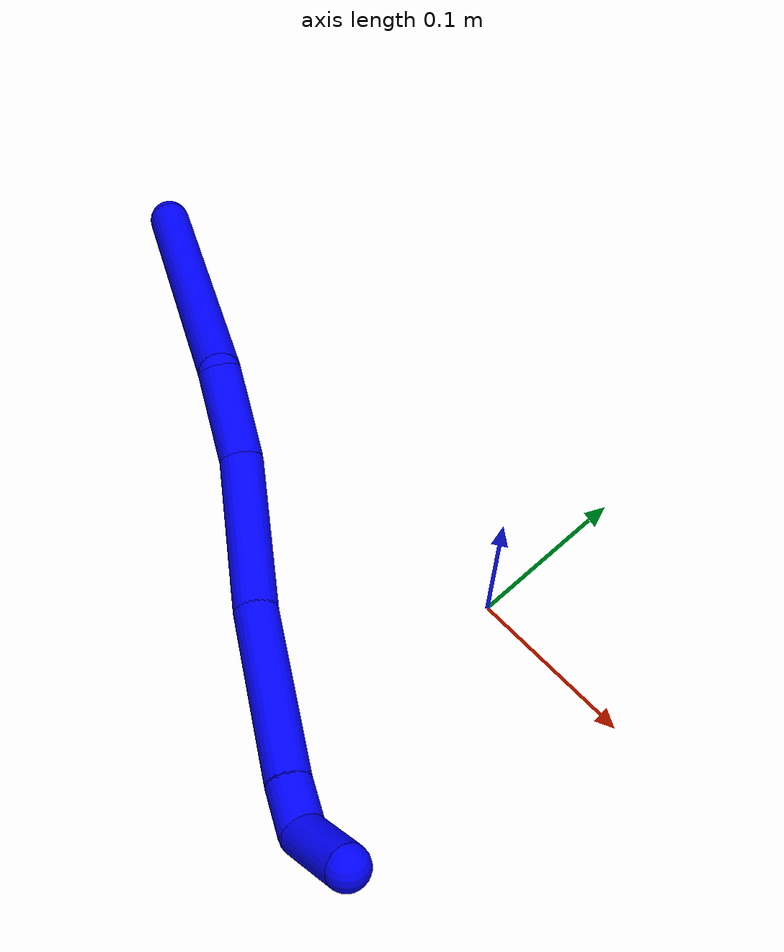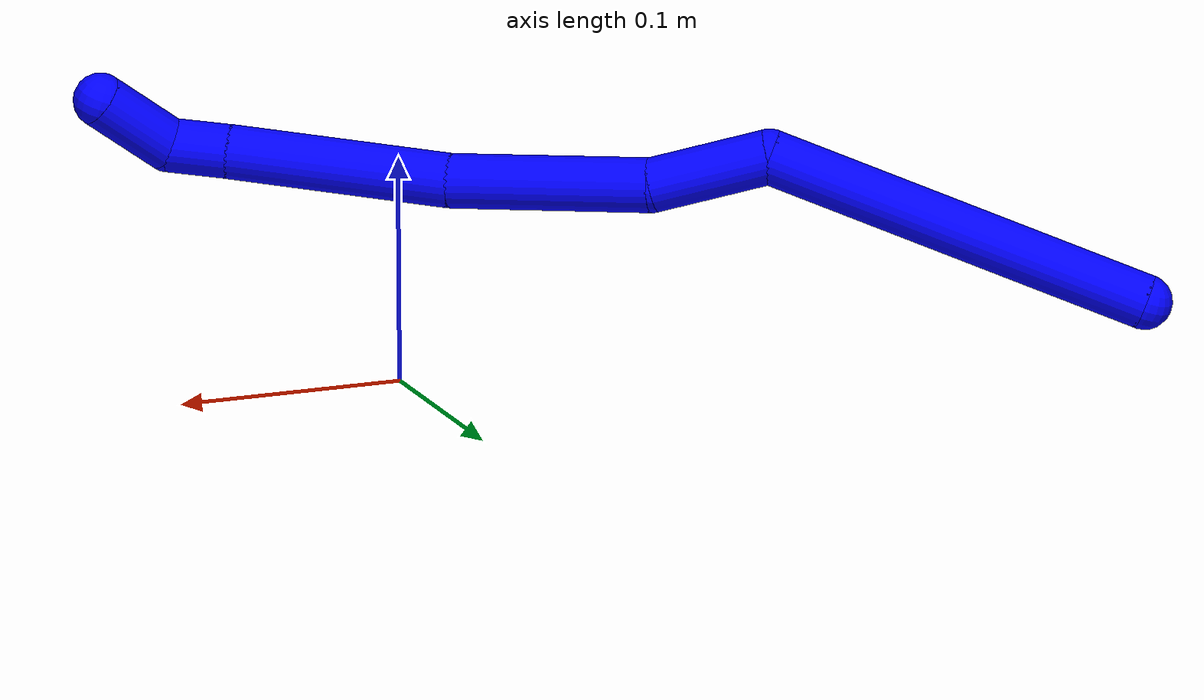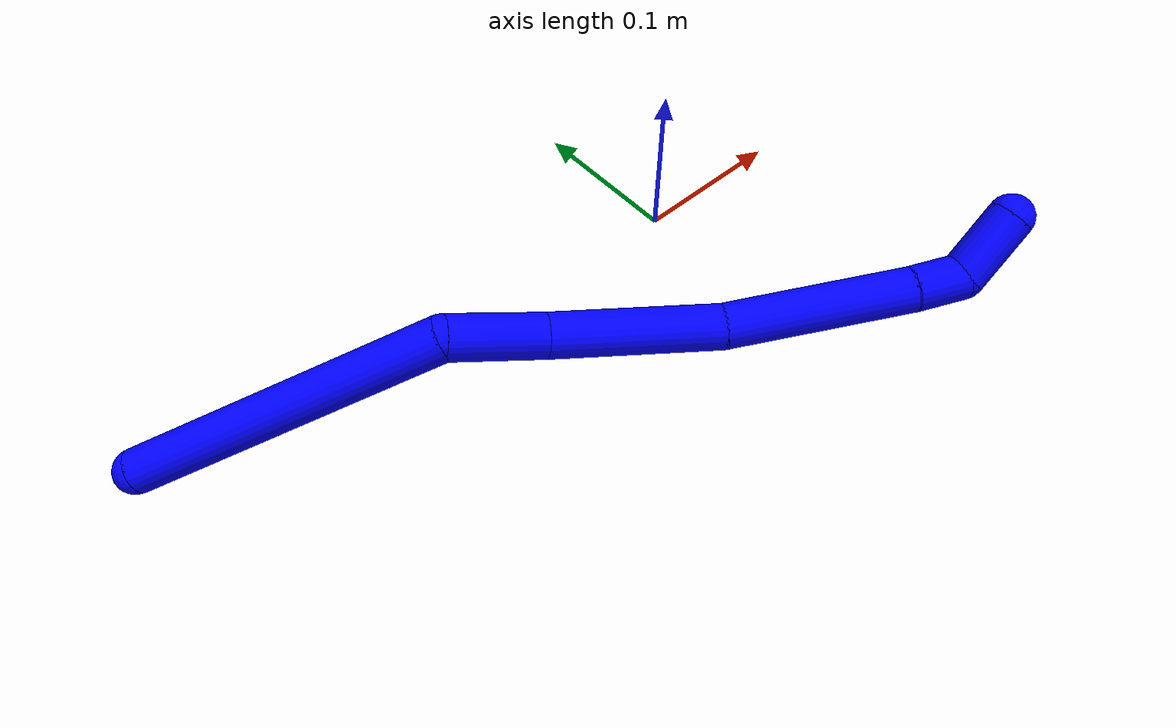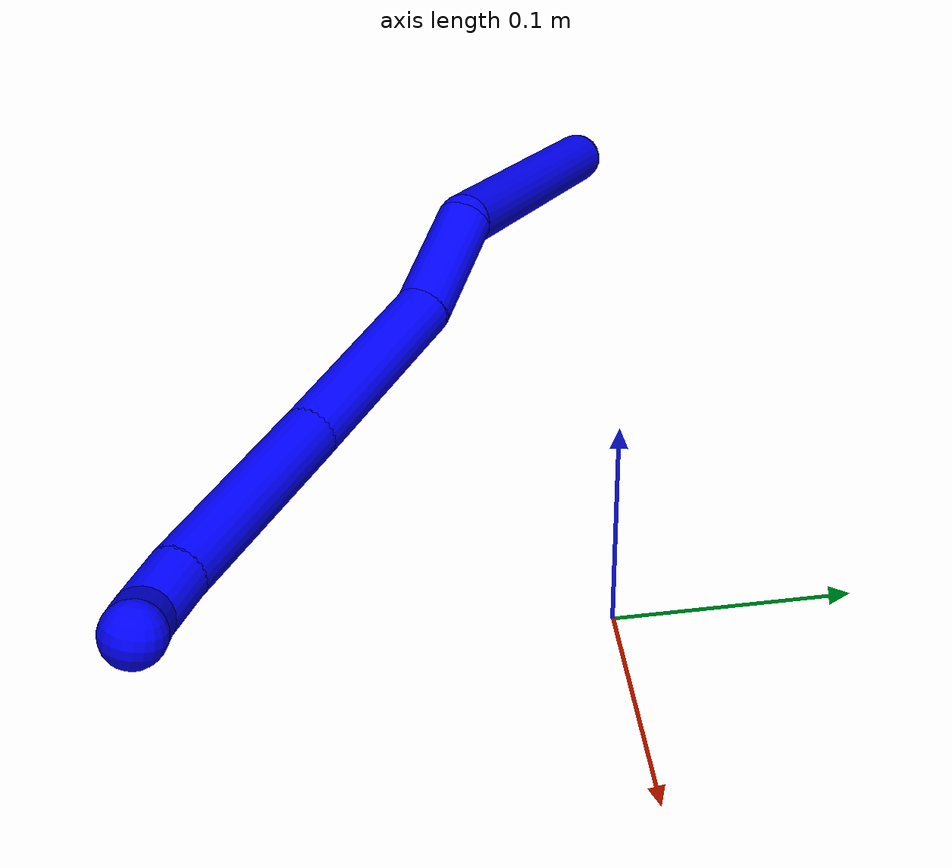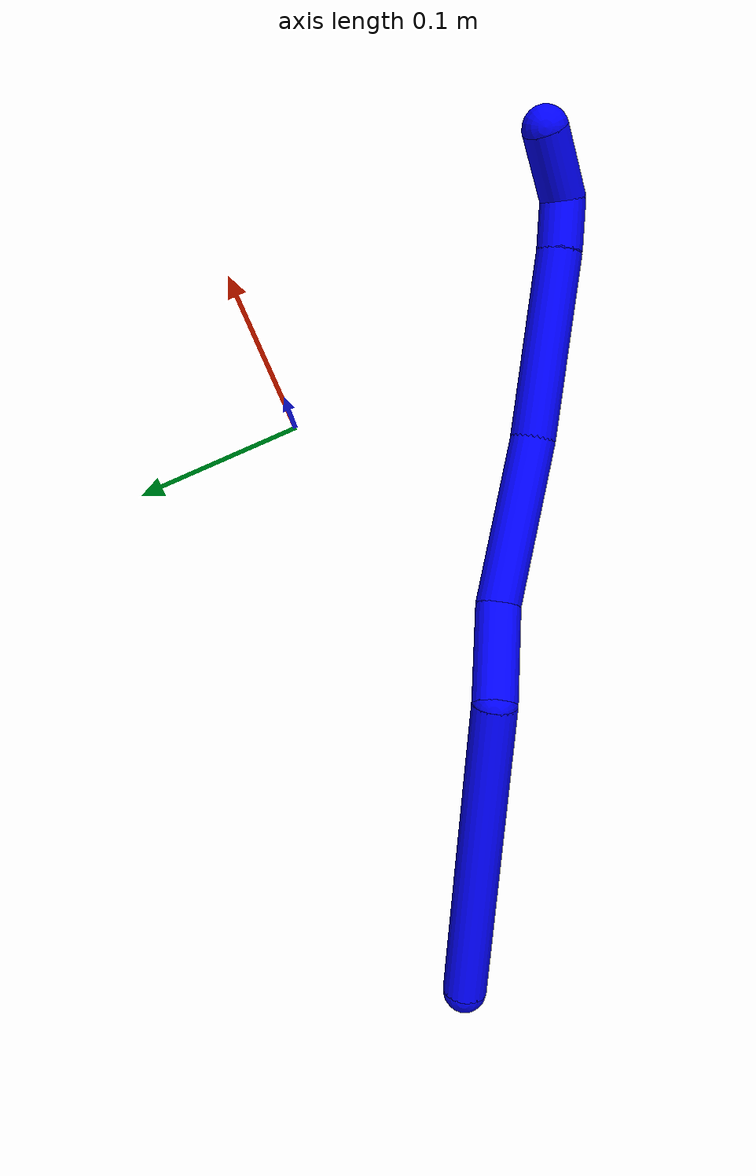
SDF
<sdf version="1.7">
 <world name="default">
  <plugin name="TubeGeneratorPlugin" filename="libtube_generator_plugin.so"/>
  <model name="photoneo_s_sensor">
   <static>1</static>
   <pose>0 0 2 1.57079 1.57079 3.14159</pose>
   <link name="link">
    <inertial><mass>0.1</mass></inertial>
    <sensor name="sensor" type="depth">
     <update_rate>30</update_rate>
     <camera>
      <horizontal_fov>1.22</horizontal_fov>
      <image><width>1920</width><height>1200</height><format>B8G8R8</format></image>
      <clip><near>0.1</near><far>4</far></clip>
      <depth_camera><output>points</output></depth_camera>
     </camera>
     <plugin name="camera_plugin" filename="libgazebo_ros_depth_camera.so">
      <baseline>0.2</baseline>
      <alwaysOn>1</alwaysOn>
      <updateRate>0.0</updateRate>
      <cameraName>camera_ir</cameraName>
      <imageTopicName>/camera/color/image_raw</imageTopicName>
      <cameraInfoTopicName>/camera/color/camera_info</cameraInfoTopicName>
      <depthImageTopicName>/camera/depth/image_raw</depthImageTopicName>
      <depthImageCameraInfoTopicName>/camera/depth/camera_info</depthImageCameraInfoTopicName>
      <pointCloudTopicName>/camera/depth/points</pointCloudTopicName>
      <frameName>fr_optical</frameName>
      <pointCloudCutoff>0.1</pointCloudCutoff>
      <pointCloudCutoffMax>2.0</pointCloudCutoffMax>
      <distortionK1>0</distortionK1>
      <distortionK2>0</distortionK2>
      <distortionK3>0</distortionK3>
      <distortionT1>0</distortionT1>
      <distortionT2>0</distortionT2>
      <CxPrime>0</CxPrime>
      <Cx>0</Cx>
      <Cy>0</Cy>
      <focalLength>0</focalLength>
      <hackBaseline>0</hackBaseline>
     </plugin>
    </sensor>
   </link>
  </model>
  <gravity>0 0 -9.8</gravity>
  <magnetic_field>6e-06 2.3e-05 -4.2e-05</magnetic_field>
  <atmosphere type="adiabatic"/>
  <physics name="default_physics" default="0" type="ode">
   <max_step_size>0.003</max_step_size>
   <real_time_factor>1</real_time_factor>
   <real_time_update_rate>1000</real_time_update_rate>
   <max_contacts>10000</max_contacts>
   <ode>
    <solver>
     <type>quick</type>
     <iters>100</iters>
     <sor>1.3</sor>
     <use_dynamic_moi_rescaling>0</use_dynamic_moi_rescaling>
    </solver>
    <constraints>
     <contact_max_correcting_vel>0</contact_max_correcting_vel>
     <contact_surface_layer>0.001</contact_surface_layer>
     <cfm>0</cfm>
     <erp>0.2</erp>
    </constraints>
   </ode>
  </physics>
  <scene><ambient>0.4 0.4 0.4 1</ambient><background>0.7 0.7 0.7 1</background><shadows>0</shadows></scene>
  <audio><device>default</device></audio>
  <spherical_coordinates>
   <surface_model>EARTH_WGS84</surface_model>
   <latitude_deg>0</latitude_deg>
   <longitude_deg>0</longitude_deg>
   <elevation>0</elevation>
   <heading_deg>0</heading_deg>
  </spherical_coordinates>
  <model name="bin">
   <static>1</static>
   <link name="bottom">
    <collision name="collision-bottom">
     <pose>0 0 -0.01 0 -0 0</pose>
     <geometry><box><size>0.8 0.6 0.02</size></box></geometry>
     <surface>
      <friction><ode><mu>100</mu><mu2>100</mu2></ode></friction>
      <contact><collide_bitmask>65535</collide_bitmask></contact>
     </surface>
    </collision>
   </link>
   <link name="west_wall">
    <collision name="collision-west_wall">
     <pose>-0.41 0 0.1 0 -0 0</pose>
     <geometry><box><size>0.02 0.6 0.2</size></box></geometry>
     <surface>
      <friction><ode><mu>100</mu><mu2>100</mu2></ode></friction>
      <contact><collide_bitmask>65535</collide_bitmask></contact>
     </surface>
    </collision>
   </link>
   <link name="east_wall">
    <collision name="collision-east_wall">
     <pose>0.41 0 0.1 0 -0 0</pose>
     <geometry><box><size>0.02 0.6 0.2</size></box></geometry>
     <surface>
      <friction><ode><mu>100</mu><mu2>100</mu2></ode></friction>
      <contact><collide_bitmask>65535</collide_bitmask></contact>
     </surface>
    </collision>
   </link>
   <link name="south_wall">
    <collision name="collision-south_wall">
     <pose>0 -0.31 0.1 0 -0 0</pose>
     <geometry><box><size>0.8 0.02 0.2</size></box></geometry>
     <surface>
      <friction><ode><mu>100</mu><mu2>100</mu2></ode></friction>
      <contact><collide_bitmask>65535</collide_bitmask></contact>
     </surface>
    </collision>
   </link>
   <link name="north_wall">
    <collision name="collision-north_wall">
     <pose>0 0.31 0.1 0 -0 0</pose>
     <geometry><box><size>0.8 0.02 0.2</size></box></geometry>
     <surface>
      <friction><ode><mu>100</mu><mu2>100</mu2></ode></friction>
      <contact><collide_bitmask>65535</collide_bitmask></contact>
     </surface>
    </collision>
   </link>
  </model>
  <model name="1">
   <static>0</static>
   <link name="1">
    <collision name="collision-cylinder-e_1_1_4">
     <pose>0.078956 -0.043581 0.000483 1.55971 1.06641 1.05674</pose>
     <geometry><cylinder><radius>0.0125</radius><length>0.180373</length></cylinder></geometry>
     <surface>
      <friction><ode><mu>1.16</mu><mu2>1.16</mu2><slip1>0</slip1><slip2>0</slip2></ode></friction>
      <contact><ode><kp>1e+06</kp><kd>1</kd><max_vel>0</max_vel><min_depth>0.001</min_depth></ode></contact>
     </surface>
    </collision>
    <visual name="visual-cylinder-e_1_1_4">
     <pose>0.078956 -0.043581 0.000483 1.55971 1.06641 1.05674</pose>
     <geometry><cylinder><radius>0.0125</radius><length>0.180373</length></cylinder></geometry>
     <material><ambient>0 0 1 1</ambient></material>
    </visual>
    <collision name="collision-cylinder-e_2_4_5">
     <pose>0.178299 -0.096614 -0.014915 2.60479 0.834409 2.03082</pose>
     <geometry><cylinder><radius>0.0125</radius><length>0.055034</length></cylinder></geometry>
     <surface>
      <friction><ode><mu>1.16</mu><mu2>1.16</mu2><slip1>0</slip1><slip2>0</slip2></ode></friction>
      <contact><ode><kp>1e+06</kp><kd>1</kd><max_vel>0</max_vel><min_depth>0.001</min_depth></ode></contact>
     </surface>
    </collision>
    <visual name="visual-cylinder-e_2_4_5">
     <pose>0.178299 -0.096614 -0.014915 2.60479 0.834409 2.03082</pose>
     <geometry><cylinder><radius>0.0125</radius><length>0.055034</length></cylinder></geometry>
     <material><ambient>0 0 1 1</ambient></material>
    </visual>
    <collision name="collision-cylinder-e_3_5_6">
     <pose>0.233842 -0.131198 -0.048942 2.19612 0.84816 1.44646</pose>
     <geometry><cylinder><radius>0.0125</radius><length>0.093742</length></cylinder></geometry>
     <surface>
      <friction><ode><mu>1.16</mu><mu2>1.16</mu2><slip1>0</slip1><slip2>0</slip2></ode></friction>
      <contact><ode><kp>1e+06</kp><kd>1</kd><max_vel>0</max_vel><min_depth>0.001</min_depth></ode></contact>
     </surface>
    </collision>
    <visual name="visual-cylinder-e_3_5_6">
     <pose>0.233842 -0.131198 -0.048942 2.19612 0.84816 1.44646</pose>
     <geometry><cylinder><radius>0.0125</radius><length>0.093742</length></cylinder></geometry>
     <material><ambient>0 0 1 1</ambient></material>
    </visual>
    <collision name="collision-cylinder-e_4_6_7">
     <pose>0.311414 -0.182075 -0.080443 2.04934 0.971041 1.42987</pose>
     <geometry><cylinder><radius>0.0125</radius><length>0.102765</length></cylinder></geometry>
     <surface>
      <friction><ode><mu>1.16</mu><mu2>1.16</mu2><slip1>0</slip1><slip2>0</slip2></ode></friction>
      <contact><ode><kp>1e+06</kp><kd>1</kd><max_vel>0</max_vel><min_depth>0.001</min_depth></ode></contact>
     </surface>
    </collision>
    <visual name="visual-cylinder-e_4_6_7">
     <pose>0.311414 -0.182075 -0.080443 2.04934 0.971041 1.42987</pose>
     <geometry><cylinder><radius>0.0125</radius><length>0.102765</length></cylinder></geometry>
     <material><ambient>0 0 1 1</ambient></material>
    </visual>
    <collision name="collision-cylinder-e_5_7_8">
     <pose>0.36601 -0.213979 -0.097393 2.09908 1.04118 1.56925</pose>
     <geometry><cylinder><radius>0.0125</radius><length>0.028232</length></cylinder></geometry>
     <surface>
      <friction><ode><mu>1.16</mu><mu2>1.16</mu2><slip1>0</slip1><slip2>0</slip2></ode></friction>
      <contact><ode><kp>1e+06</kp><kd>1</kd><max_vel>0</max_vel><min_depth>0.001</min_depth></ode></contact>
     </surface>
    </collision>
    <visual name="visual-cylinder-e_5_7_8">
     <pose>0.36601 -0.213979 -0.097393 2.09908 1.04118 1.56925</pose>
     <geometry><cylinder><radius>0.0125</radius><length>0.028232</length></cylinder></geometry>
     <material><ambient>0 0 1 1</ambient></material>
    </visual>
    <collision name="collision-cylinder-e_6_8_2">
     <pose>0.396722 -0.222626 -0.09409 0.346246 1.194 0.236627</pose>
     <geometry><cylinder><radius>0.0125</radius><length>0.039855</length></cylinder></geometry>
     <surface>
      <friction><ode><mu>1.16</mu><mu2>1.16</mu2><slip1>0</slip1><slip2>0</slip2></ode></friction>
      <contact><ode><kp>1e+06</kp><kd>1</kd><max_vel>0</max_vel><min_depth>0.001</min_depth></ode></contact>
     </surface>
    </collision>
    <visual name="visual-cylinder-e_6_8_2">
     <pose>0.396722 -0.222626 -0.09409 0.346246 1.194 0.236627</pose>
     <geometry><cylinder><radius>0.0125</radius><length>0.039855</length></cylinder></geometry>
     <material><ambient>0 0 1 1</ambient></material>
    </visual>
    <collision name="collision-sphere-2">
     <pose>0.415251 -0.225115 -0.087193 0 -0 0</pose>
     <geometry><sphere><radius>0.0125</radius></sphere></geometry>
     <surface>
      <friction><ode><mu>1.16</mu><mu2>1.16</mu2><slip1>0</slip1><slip2>0</slip2></ode></friction>
      <contact><ode><kp>1e+06</kp><kd>1</kd><max_vel>0</max_vel><min_depth>0.001</min_depth></ode></contact>
     </surface>
    </collision>
    <visual name="visual-sphere-2">
     <pose>0.415251 -0.225115 -0.087193 0 -0 0</pose>
     <geometry><sphere><radius>0.0125</radius></sphere></geometry>
     <material><ambient>0 0 1 1</ambient></material>
    </visual>
    <collision name="collision-sphere-4">
     <pose>0.157912 -0.087163 0.000966 0 -0 0</pose>
     <geometry><sphere><radius>0.0125</radius></sphere></geometry>
     <surface>
      <friction><ode><mu>1.16</mu><mu2>1.16</mu2><slip1>0</slip1><slip2>0</slip2></ode></friction>
      <contact><ode><kp>1e+06</kp><kd>1</kd><max_vel>0</max_vel><min_depth>0.001</min_depth></ode></contact>
     </surface>
    </collision>
    <visual name="visual-sphere-4">
     <pose>0.157912 -0.087163 0.000966 0 -0 0</pose>
     <geometry><sphere><radius>0.0125</radius></sphere></geometry>
     <material><ambient>0 0 1 1</ambient></material>
    </visual>
    <collision name="collision-sphere-1">
     <geometry><sphere><radius>0.0125</radius></sphere></geometry>
     <surface>
      <friction><ode><mu>1.16</mu><mu2>1.16</mu2><slip1>0</slip1><slip2>0</slip2></ode></friction>
      <contact><ode><kp>1e+06</kp><kd>1</kd><max_vel>0</max_vel><min_depth>0.001</min_depth></ode></contact>
     </surface>
    </collision>
    <visual name="visual-sphere-1">
     <geometry><sphere><radius>0.0125</radius></sphere></geometry>
     <material><ambient>0 0 1 1</ambient></material>
    </visual>
    <collision name="collision-sphere-8">
     <pose>0.378192 -0.220138 -0.100987 0 -0 0</pose>
     <geometry><sphere><radius>0.0125</radius></sphere></geometry>
     <surface>
      <friction><ode><mu>1.16</mu><mu2>1.16</mu2><slip1>0</slip1><slip2>0</slip2></ode></friction>
      <contact><ode><kp>1e+06</kp><kd>1</kd><max_vel>0</max_vel><min_depth>0.001</min_depth></ode></contact>
     </surface>
    </collision>
    <visual name="visual-sphere-8">
     <pose>0.378192 -0.220138 -0.100987 0 -0 0</pose>
     <geometry><sphere><radius>0.0125</radius></sphere></geometry>
     <material><ambient>0 0 1 1</ambient></material>
    </visual>
    <collision name="collision-sphere-5">
     <pose>0.198686 -0.106065 -0.030797 0 -0 0</pose>
     <geometry><sphere><radius>0.0125</radius></sphere></geometry>
     <surface>
      <friction><ode><mu>1.16</mu><mu2>1.16</mu2><slip1>0</slip1><slip2>0</slip2></ode></friction>
      <contact><ode><kp>1e+06</kp><kd>1</kd><max_vel>0</max_vel><min_depth>0.001</min_depth></ode></contact>
     </surface>
    </collision>
    <visual name="visual-sphere-5">
     <pose>0.198686 -0.106065 -0.030797 0 -0 0</pose>
     <geometry><sphere><radius>0.0125</radius></sphere></geometry>
     <material><ambient>0 0 1 1</ambient></material>
    </visual>
    <collision name="collision-sphere-6">
     <pose>0.268999 -0.156331 -0.067087 0 -0 0</pose>
     <geometry><sphere><radius>0.0125</radius></sphere></geometry>
     <surface>
      <friction><ode><mu>1.16</mu><mu2>1.16</mu2><slip1>0</slip1><slip2>0</slip2></ode></friction>
      <contact><ode><kp>1e+06</kp><kd>1</kd><max_vel>0</max_vel><min_depth>0.001</min_depth></ode></contact>
     </surface>
    </collision>
    <visual name="visual-sphere-6">
     <pose>0.268999 -0.156331 -0.067087 0 -0 0</pose>
     <geometry><sphere><radius>0.0125</radius></sphere></geometry>
     <material><ambient>0 0 1 1</ambient></material>
    </visual>
    <collision name="collision-sphere-7">
     <pose>0.353828 -0.207819 -0.093798 0 -0 0</pose>
     <geometry><sphere><radius>0.0125</radius></sphere></geometry>
     <surface>
      <friction><ode><mu>1.16</mu><mu2>1.16</mu2><slip1>0</slip1><slip2>0</slip2></ode></friction>
      <contact><ode><kp>1e+06</kp><kd>1</kd><max_vel>0</max_vel><min_depth>0.001</min_depth></ode></contact>
     </surface>
    </collision>
    <visual name="visual-sphere-7">
     <pose>0.353828 -0.207819 -0.093798 0 -0 0</pose>
     <geometry><sphere><radius>0.0125</radius></sphere></geometry>
     <material><ambient>0 0 1 1</ambient></material>
    </visual>
    <inertial>
     <pose>0.208243 -0.118203 -0.040176 0 -0 0</pose>
     <mass>0.5</mass>
     <inertia>
      <ixx>0.000482</ixx>
      <ixy>0</ixy>
      <ixz>0</ixz>
      <iyy>0.000805</iyy>
      <iyz>0</iyz>
      <izz>-0.000261</izz>
     </inertia>
    </inertial>
   </link>
   <pose>-0.340106 0.042106 0.011721 -0.2559 -0.261317 0.035865</pose>
  </model>
 </world>
</sdf>
